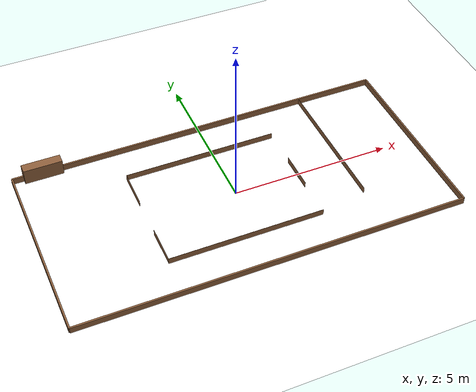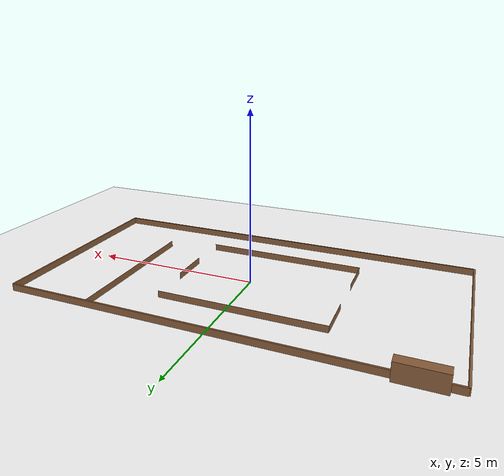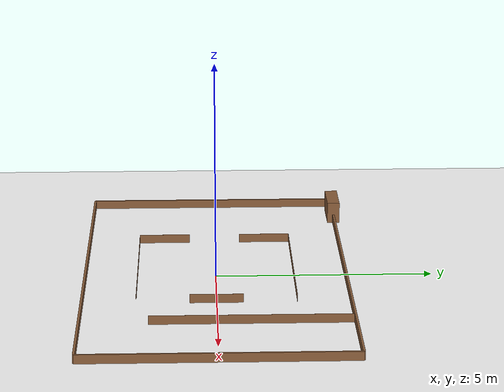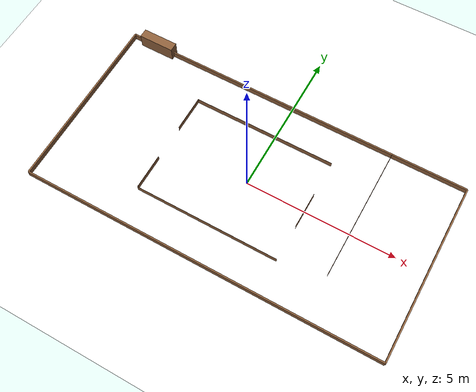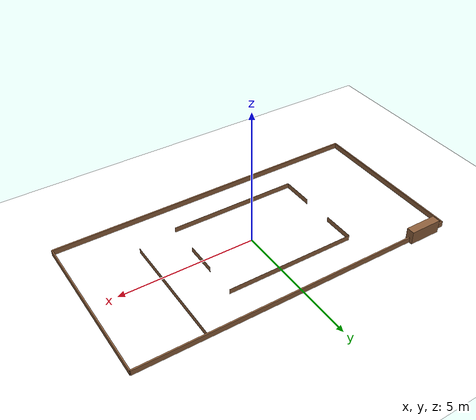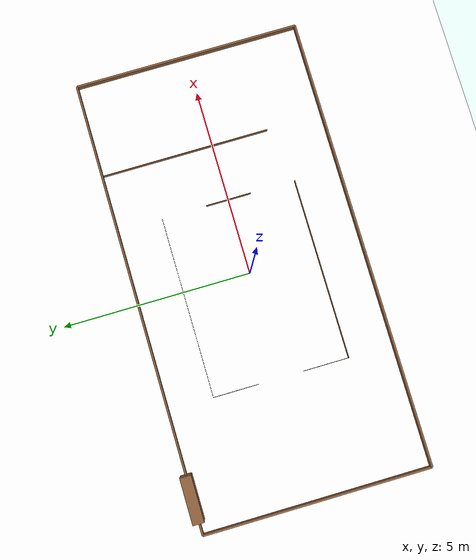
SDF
<?xml version="1.0"?>
<sdf version='1.9'>
  <world name = "robocon_arena">

    <physics name="1ms" type="ignored">
        <max_step_size>0.001</max_step_size>
        <real_time_factor>1.0</real_time_factor>
    </physics>
    <plugin
        filename="gz-sim-physics-system"
        name="gz::sim::systems::Physics">
    </plugin>
    <plugin
        filename="gz-sim-user-commands-system"
        name="gz::sim::systems::UserCommands">
    </plugin>
    <plugin
        filename="gz-sim-scene-broadcaster-system"
        name="gz::sim::systems::SceneBroadcaster">
    </plugin>

    <plugin
        filename="libignition-gazebo-sensors-system.so"
        name="ignition::gazebo::systems::Sensors">
        <render_engine>ogre2</render_engine>
    </plugin>

    <light type="directional" name="sun">
        <cast_shadows>false</cast_shadows>
        <pose>0 0 10 0 0 0</pose>
        <diffuse>0.8 0.8 0.8 1</diffuse>
        <specular>0.2 0.2 0.2 1</specular>
        <attenuation>
            <range>1000</range>
            <constant>0.9</constant>
            <linear>0.01</linear>
            <quadratic>0.001</quadratic>
        </attenuation>
        <direction>-0.5 0.1 -0.9</direction>
    </light>

    <model name="ground_plane">
      <static>true</static>
      <link name="link">
          <collision name="collision">
          <geometry>
              <plane>
              <normal>0 0 1</normal>
              <size>20 20</size>
              </plane>
          </geometry>
          </collision>
          <visual name="visual">
          <geometry>
              <plane>
              <normal>0 0 1</normal>
              <size>20 20</size>
              </plane>
          </geometry>
          <material>
              <ambient>1 1 1 1</ambient>
              <diffuse>1 1 1 1</diffuse>
          </material>
          </visual>
      </link>
    </model>

    <model name ="navigation_world">

        <link name="outer_frame_1">
            <pose>6 0 0.1 0 0 1.5708</pose>
            <inertial>
                <mass>5.0</mass>
                <inertia>
                <ixx>0.0417</ixx>
                <iyy>0.0417</iyy>
                <izz>0.0417</izz>
                <ixy>0</ixy>
                <ixz>0</ixz>
                <iyz>0</iyz>
                </inertia>
            </inertial>
            <collision name="collision">
                <geometry>
                <box>
                    <size>6 0.05 0.2</size>  <!-- length width height (meters) -->
                </box>
                </geometry>
            </collision>
            <visual name="visual">
                <geometry>
                <box>
                    <size>6 0.05 0.2</size>
                </box>
                </geometry>
                <material>
                    <ambient>0.36 0.25 0.20 1</ambient>
                    <diffuse>0.55 0.37 0.23 1</diffuse>
                    <specular>0.15 0.10 0.08 1</specular>
                    <emissive>0 0 0 1</emissive>
                </material>
            </visual>
        </link>

        <link name="outer_frame_2">
            <pose>-6 0 0.1 0 0 1.5708</pose>
            <inertial>
                <mass>5.0</mass>
                <inertia>
                <ixx>0.0417</ixx>
                <iyy>0.0417</iyy>
                <izz>0.0417</izz>
                <ixy>0</ixy>
                <ixz>0</ixz>
                <iyz>0</iyz>
                </inertia>
            </inertial>
            <collision name="collision">
                <geometry>
                <box>
                    <size>6 0.05 0.2</size>  <!-- length width height (meters) -->
                </box>
                </geometry>
            </collision>
            <visual name="visual">
                <geometry>
                <box>
                    <size>6 0.05 0.2</size>
                </box>
                </geometry>
                <material>
                    <ambient>0.36 0.25 0.20 1</ambient>
                    <diffuse>0.55 0.37 0.23 1</diffuse>
                    <specular>0.15 0.10 0.08 1</specular>
                    <emissive>0 0 0 1</emissive>
                </material>
            </visual>
        </link>

        <link name="outer_frame_3">
            <pose>0 -3 0.1 0 0 0</pose>
            <inertial>
                <mass>5.0</mass>
                <inertia>
                <ixx>0.0417</ixx>
                <iyy>0.0417</iyy>
                <izz>0.0417</izz>
                <ixy>0</ixy>
                <ixz>0</ixz>
                <iyz>0</iyz>
                </inertia>
            </inertial>
            <collision name="collision">
                <geometry>
                <box>
                    <size>12 0.05 0.2</size>  <!-- length width height (meters) -->
                </box>
                </geometry>
            </collision>
            <visual name="visual">
                <geometry>
                <box>
                    <size>12 0.05 0.2</size>
                </box>
                </geometry>
                <material>
                    <ambient>0.36 0.25 0.20 1</ambient>
                    <diffuse>0.55 0.37 0.23 1</diffuse>
                    <specular>0.15 0.10 0.08 1</specular>
                    <emissive>0 0 0 1</emissive>
                </material>
            </visual>
        </link>

        <link name="outer_frame_4">
            <pose>0 3 0.1 0 0 0</pose>
            <inertial>
                <mass>5.0</mass>
                <inertia>
                <ixx>0.0417</ixx>
                <iyy>0.0417</iyy>
                <izz>0.0417</izz>
                <ixy>0</ixy>
                <ixz>0</ixz>
                <iyz>0</iyz>
                </inertia>
            </inertial>
            <collision name="collision">
                <geometry>
                <box>
                    <size>12 0.05 0.2</size>  <!-- length width height (meters) -->
                </box>
                </geometry>
            </collision>
            <visual name="visual">
                <geometry>
                <box>
                    <size>12 0.05 0.2</size>
                </box>
                </geometry>
                <material>
                    <ambient>0.36 0.25 0.20 1</ambient>
                    <diffuse>0.55 0.37 0.23 1</diffuse>
                    <specular>0.15 0.10 0.08 1</specular>
                    <emissive>0 0 0 1</emissive>
                </material>
            </visual>
        </link>

        <link name="spher_rack">
            <pose>-5.05 3 0.25 0 0 0</pose>
            <inertial>
                <mass>5.0</mass>
                <inertia>
                <ixx>0.0417</ixx>
                <iyy>0.0417</iyy>
                <izz>0.0417</izz>
                <ixy>0</ixy>
                <ixz>0</ixz>
                <iyz>0</iyz>
                </inertia>
            </inertial>
            <collision name="collision">
                <geometry>
                <box>
                    <size>1.2 0.3 0.5</size>  <!-- length width height (meters) -->
                </box>
                </geometry>
            </collision>
            <visual name="visual">
                <geometry>
                <box>
                    <size>1.2 0.3 0.5</size>
                </box>
                </geometry>
                <material>
                    <ambient>0.36 0.25 0.20 1</ambient>
                    <diffuse>0.55 0.37 0.23 1</diffuse>
                    <specular>0.15 0.10 0.08 1</specular>
                    <emissive>0 0 0 1</emissive>
                </material>
            </visual>
        </link>

        <link name="obstacle_1">
            <pose>-2.8 1.2 0.1 0 0 0</pose>
            <inertial>
                <mass>5.0</mass>
                <inertia>
                <ixx>0.0417</ixx>
                <iyy>0.0417</iyy>
                <izz>0.0417</izz>
                <ixy>0</ixy>
                <ixz>0</ixz>
                <iyz>0</iyz>
                </inertia>
            </inertial>
            <collision name="collision">
                <geometry>
                <box>
                    <size>0.001 1.2 0.2</size>  <!-- length width height (meters) -->
                </box>
                </geometry>
            </collision>
            <visual name="visual">
                <geometry>
                <box>
                    <size>0.001 1.2 0.2</size>
                </box>
                </geometry>
                <material>
                    <ambient>0.36 0.25 0.20 1</ambient>
                    <diffuse>0.55 0.37 0.23 1</diffuse>
                    <specular>0.15 0.10 0.08 1</specular>
                    <emissive>0 0 0 1</emissive>
                </material>
            </visual>
        </link>

        <link name="obstacle_2">
            <pose>-2.8 -1.2 0.1 0 0 0</pose>
            <inertial>
                <mass>5.0</mass>
                <inertia>
                <ixx>0.0417</ixx>
                <iyy>0.0417</iyy>
                <izz>0.0417</izz>
                <ixy>0</ixy>
                <ixz>0</ixz>
                <iyz>0</iyz>
                </inertia>
            </inertial>
            <collision name="collision">
                <geometry>
                <box>
                    <size>0.001 1.2 0.2</size>  <!-- length width height (meters) -->
                </box>
                </geometry>
            </collision>
            <visual name="visual">
                <geometry>
                <box>
                    <size>0.001 1.2 0.2</size>
                </box>
                </geometry>
                <material>
                    <ambient>0.36 0.25 0.20 1</ambient>
                    <diffuse>0.55 0.37 0.23 1</diffuse>
                    <specular>0.15 0.10 0.08 1</specular>
                    <emissive>0 0 0 1</emissive>
                </material>
            </visual>
        </link>

        <link name="obstacle_3">
            <pose>2 0 0.1 0 0 0</pose>
            <inertial>
                <mass>5.0</mass>
                <inertia>
                <ixx>0.0417</ixx>
                <iyy>0.0417</iyy>
                <izz>0.0417</izz>
                <ixy>0</ixy>
                <ixz>0</ixz>
                <iyz>0</iyz>
                </inertia>
            </inertial>
            <collision name="collision">
                <geometry>
                <box>
                    <size>0.001 1.2 0.2</size>  <!-- length width height (meters) -->
                </box>
                </geometry>
            </collision>
            <visual name="visual">
                <geometry>
                <box>
                    <size>0.001 1.2 0.2</size>
                </box>
                </geometry>
                <material>
                    <ambient>0.36 0.25 0.20 1</ambient>
                    <diffuse>0.55 0.37 0.23 1</diffuse>
                    <specular>0.15 0.10 0.08 1</specular>
                    <emissive>0 0 0 1</emissive>
                </material>
            </visual>
        </link>

        <link name="obstacle_4">
            <pose>-0.4 1.8 0.1 0 0 0</pose>
            <inertial>
                <mass>5.0</mass>
                <inertia>
                <ixx>0.0417</ixx>
                <iyy>0.0417</iyy>
                <izz>0.0417</izz>
                <ixy>0</ixy>
                <ixz>0</ixz>
                <iyz>0</iyz>
                </inertia>
            </inertial>
            <collision name="collision">
                <geometry>
                <box>
                    <size>4.8 0.001 0.2</size>  <!-- length width height (meters) -->
                </box>
                </geometry>
            </collision>
            <visual name="visual">
                <geometry>
                <box>
                    <size>4.8 0.001 0.2</size>
                </box>
                </geometry>
                <material>
                    <ambient>0.36 0.25 0.20 1</ambient>
                    <diffuse>0.55 0.37 0.23 1</diffuse>
                    <specular>0.15 0.10 0.08 1</specular>
                    <emissive>0 0 0 1</emissive>
                </material>
            </visual>
        </link>

        <link name="obstacle_5">
            <pose>-0.4 -1.8 0.1 0 0 0</pose>
            <inertial>
                <mass>5.0</mass>
                <inertia>
                <ixx>0.0417</ixx>
                <iyy>0.0417</iyy>
                <izz>0.0417</izz>
                <ixy>0</ixy>
                <ixz>0</ixz>
                <iyz>0</iyz>
                </inertia>
            </inertial>
            <collision name="collision">
                <geometry>
                <box>
                    <size>4.8 0.001 0.2</size>  <!-- length width height (meters) -->
                </box>
                </geometry>
            </collision>
            <visual name="visual">
                <geometry>
                <box>
                    <size>4.8 0.001 0.2</size>
                </box>
                </geometry>
                <material>
                    <ambient>0.36 0.25 0.20 1</ambient>
                    <diffuse>0.55 0.37 0.23 1</diffuse>
                    <specular>0.15 0.10 0.08 1</specular>
                    <emissive>0 0 0 1</emissive>
                </material>
            </visual>
        </link>

        <link name="obstacle_6">
            <pose>3.5 0.75 0.1 0 0 0</pose>
            <inertial>
                <mass>5.0</mass>
                <inertia>
                <ixx>0.0417</ixx>
                <iyy>0.0417</iyy>
                <izz>0.0417</izz>
                <ixy>0</ixy>
                <ixz>0</ixz>
                <iyz>0</iyz>
                </inertia>
            </inertial>
            <collision name="collision">
                <geometry>
                <box>
                    <size>0.001 4.5 0.2</size>  <!-- length width height (meters) -->
                </box>
                </geometry>
            </collision>
            <visual name="visual">
                <geometry>
                <box>
                    <size>0.001 4.5 0.2</size>
                </box>
                </geometry>
                <material>
                    <ambient>0.36 0.25 0.20 1</ambient>
                    <diffuse>0.55 0.37 0.23 1</diffuse>
                    <specular>0.15 0.10 0.08 1</specular>
                    <emissive>0 0 0 1</emissive>
                </material>
            </visual>
        </link>

    </model>
  </world>
</sdf>
